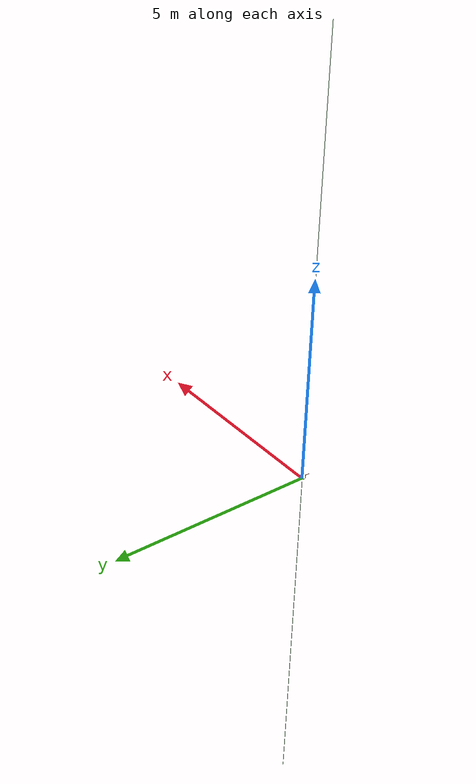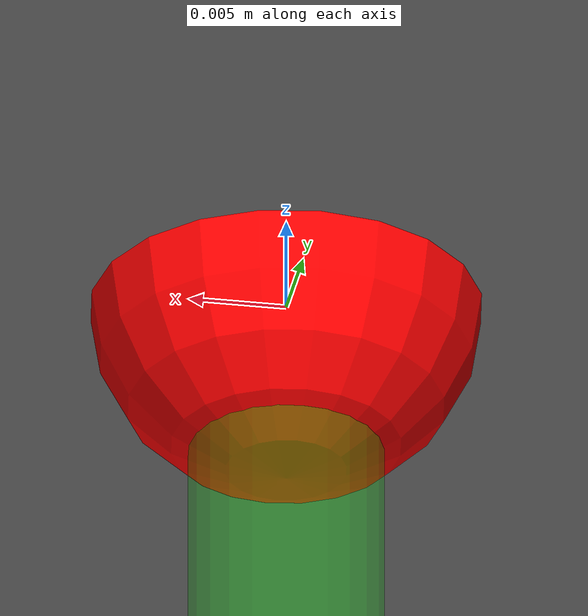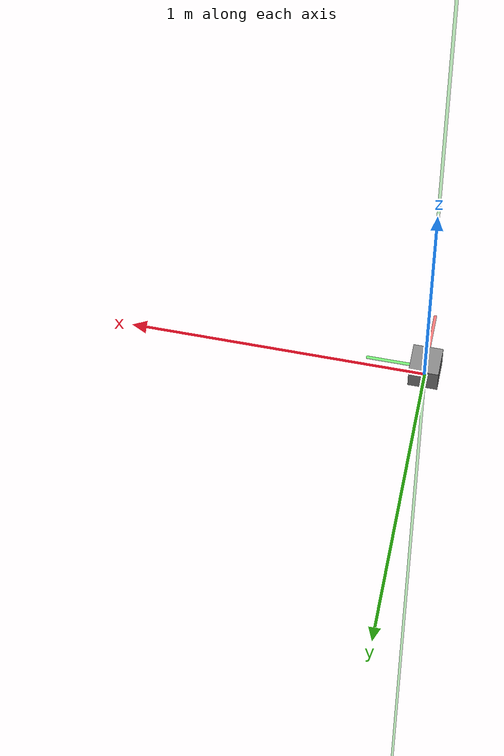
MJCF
<mujoco model="primitive_hand">
    <worldbody>
        <body name="primitive_gripper" pos="0 0 0">
            <site name="ft_frame" pos="0 0 0" size="0.01 0.01 0.01" rgba="1 0 0 1" type="sphere" group="1"/>
            <inertial pos="0 0 0" mass="0." />
            <body name="eef" pos="0 0 0.05" quat="0.707105 0 0 -0.707105">
                <inertial pos="0 0 0" mass="1e-3" diaginertia="1e-4 1e-4 1e-4" />

                <site name="grip_site" pos="0 0 0" size="0.01 0.01 0.01" rgba="1 1 0 0.5" type="sphere" group="1"/>
                <site name="ee_x" pos="0.1 0 0" size="0.005 .1"  quat="0.707105  0 0.707108 0 " rgba="1 0 0 0.5" type="cylinder" group="1"/>
                <site name="ee_y" pos="0 0.1 0" size="0.005 .1" quat="0.707105 0.707108 0 0" rgba="0 1 0 0.5" type="cylinder" group="1"/>
                <site name="ee_z" pos="0 0 0.1" size="0.005 .1" quat="1 0 0 0" rgba="0 0 1 0.5" type="cylinder" group="1"/>
                <!-- This site was added for visualization. -->
                <site name="grip_site_cylinder" pos="0 0 0" size="0.005 10" rgba="0 1 0 0.3" type="cylinder" group="1"/>
                <!-- Add box geom for collision and visualization -->
                <geom name="primitive_geom_col" type="box" size="0.05 0.05 0.05" rgba="0.5
                0.5 0.5 1" group="0"/>
                <geom name="primitive_geom_vis" type="box" size="0.05 0.05 0.05" rgba="0.5
                1.0 0.5 1" group="1" contype="0" conaffinity="0"/>
            </body>
        </body>
    </worldbody>
    <sensor>
        <force name="force_ee" site="ft_frame"/>
        <torque name="torque_ee" site="ft_frame"/>
    </sensor>
</mujoco>
